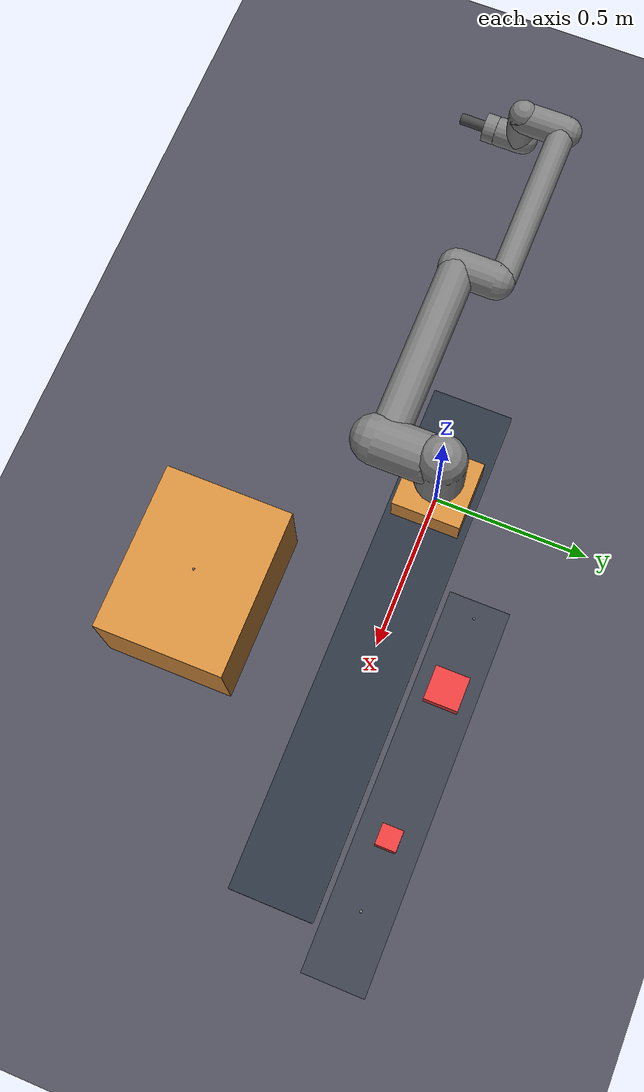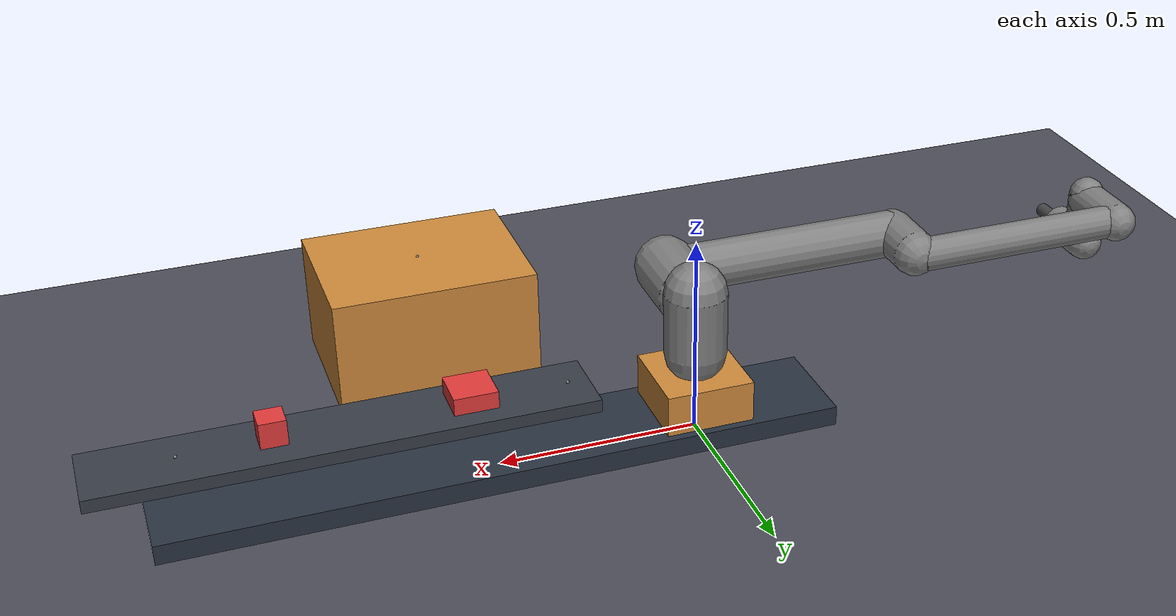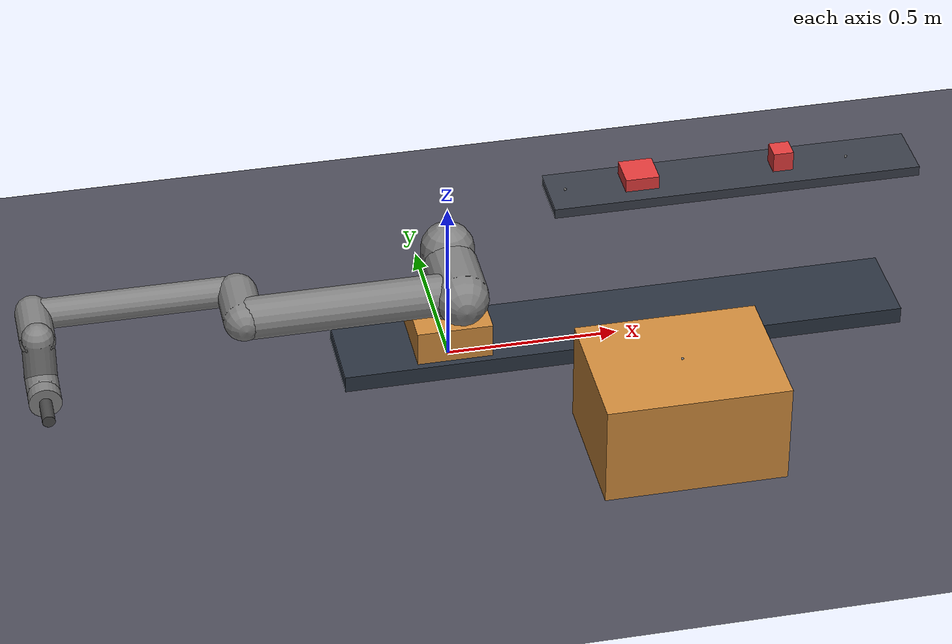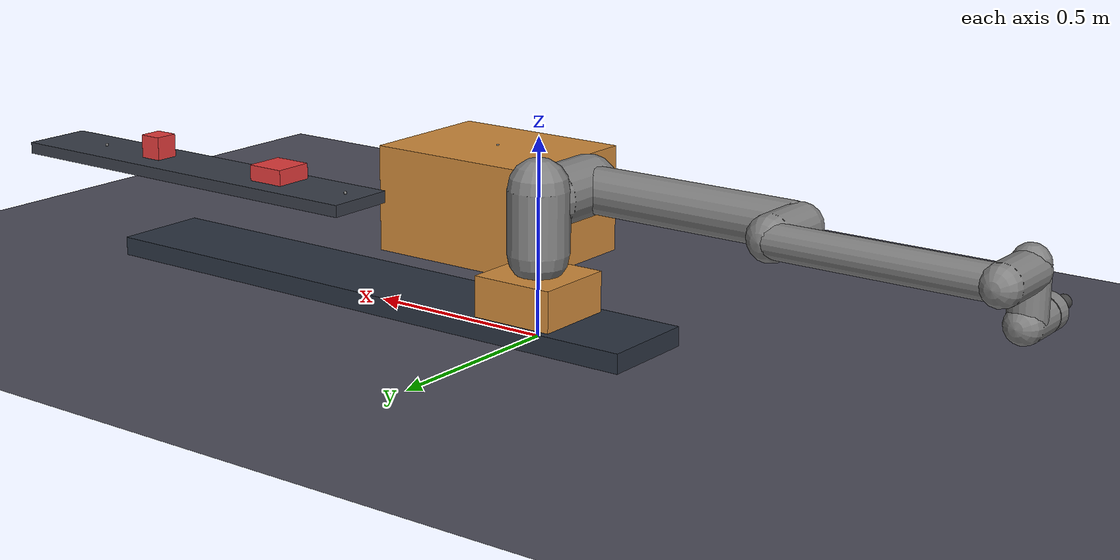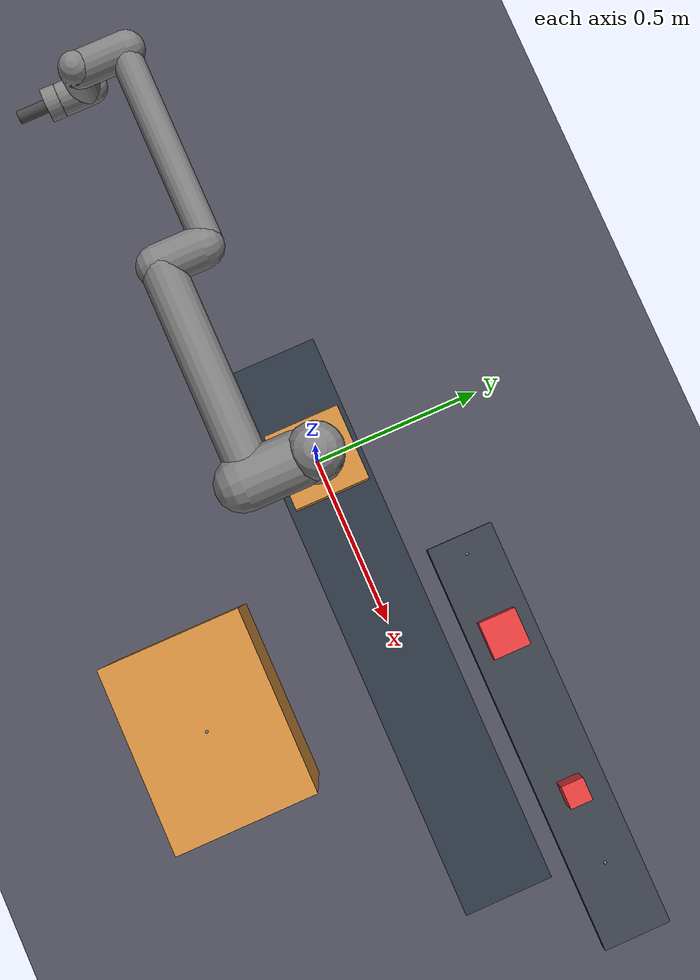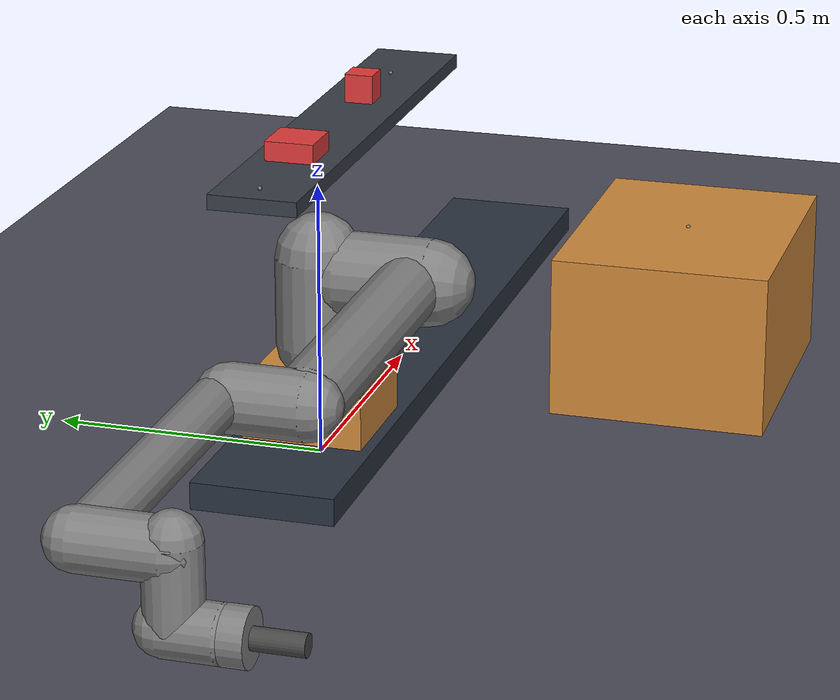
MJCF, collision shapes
<mujoco model="rail_ur10e">
  <compiler angle="radian" meshdir="assets" autolimits="true"/>
  <option integrator="implicitfast" timestep="0.002"/>

  <default>
    <default class="ur10e">
      <material specular="0.5" shininess="0.25"/>
      <joint axis="0 1 0" range="-6.28319 6.28319" armature="0.1"/>
      <general biastype="affine" ctrlrange="-6.2831 6.2831" gainprm="5000" biasprm="0 -5000 -500"/>
      <default class="size4">
        <joint damping="10"/>
        <general forcerange="-330 330"/>
      </default>
      <default class="size3">
        <joint damping="5"/>
        <general forcerange="-150 150"/>
        <default class="size3_limited">
          <joint range="-3.1415 3.1415"/>
          <general ctrlrange="-3.1415 3.1415"/>
        </default>
      </default>
      <default class="size2">
        <joint damping="2"/>
        <general forcerange="-56 56"/>
      </default>
      <default class="visual">
        <geom type="mesh" contype="0" conaffinity="0" group="2"/>
      </default>
      <default class="collision">
        <geom type="capsule" group="3" contype="1" conaffinity="6"/>
        <default class="eef_collision">
          <geom type="cylinder" contype="16" conaffinity="2"/>
        </default>
      </default>
      <site size="0.001" rgba="0.5 0.5 0.5 0.3" group="4"/>
    </default>
  </default>

  <asset>
    <material class="ur10e" name="black" rgba="0.033 0.033 0.033 1"/>
    <material class="ur10e" name="jointgray" rgba="0.278 0.278 0.278 1"/>
    <material class="ur10e" name="linkgray" rgba="0.82 0.82 0.82 1"/>
    <material class="ur10e" name="urblue" rgba="0.49 0.678 0.8 1"/>
    <!-- Cell furniture, named so a viewer can theme it like any other material. -->
    <material name="carriage" rgba="0.81 0.54 0.23 1"/>
    <material name="rail" rgba="0.165 0.2 0.251 1"/>
    <material name="belt" rgba="0.22 0.24 0.28 1"/>
    <material name="part" rgba="0.886 0.231 0.231 1"/>
    <mesh file="base_0.obj"/><mesh file="base_1.obj"/>
    <mesh file="shoulder_0.obj"/><mesh file="shoulder_1.obj"/><mesh file="shoulder_2.obj"/>
    <mesh file="upperarm_0.obj"/><mesh file="upperarm_1.obj"/><mesh file="upperarm_2.obj"/><mesh file="upperarm_3.obj"/>
    <mesh file="forearm_0.obj"/><mesh file="forearm_1.obj"/><mesh file="forearm_2.obj"/><mesh file="forearm_3.obj"/>
    <mesh file="wrist1_0.obj"/><mesh file="wrist1_1.obj"/><mesh file="wrist1_2.obj"/>
    <mesh file="wrist2_0.obj"/><mesh file="wrist2_1.obj"/><mesh file="wrist2_2.obj"/>
    <mesh file="wrist3.obj"/>
  </asset>

  <worldbody>
    <light pos="0 0 3" dir="0 0 -1"/>
    <geom name="floor" type="plane" size="4 4 0.1" rgba="0.3 0.3 0.35 1"
          contype="2" conaffinity="7"/>
    <geom name="rail_beam" type="box" size="0.825 0.13 0.025" pos="0.5 0 0.03"
          contype="0" conaffinity="0" material="rail"/>

    <!-- 7th axis: linear carriage 0..1.45 m along X. -->
    <body name="carriage" pos="0 0 0.1">
      <joint name="rail" type="slide" axis="1 0 0" range="0 1.45" damping="30"/>
      <geom type="box" size="0.11 0.11 0.06" mass="12" material="carriage"/>

      <!-- Real UR10e base on the carriage (menagerie geometry verbatim). -->
      <body name="base" pos="0 0 0.06" quat="0 0 0 -1" childclass="ur10e">
        <inertial mass="4.0" pos="0 0 0" diaginertia="0.0061063308908 0.0061063308908 0.01125"/>
        <geom mesh="base_0" material="black" class="visual"/>
        <geom mesh="base_1" material="jointgray" class="visual"/>
        <body name="shoulder_link" pos="0 0 0.181">
          <inertial pos="0 0 0" mass="7.778" diaginertia="0.0314743 0.0314743 0.0218756"/>
          <joint name="j1" class="size4" axis="0 0 1"/>
          <geom mesh="shoulder_0" material="urblue" class="visual"/>
          <geom mesh="shoulder_1" material="black" class="visual"/>
          <geom mesh="shoulder_2" material="jointgray" class="visual"/>
          <geom class="collision" size="0.078 0.08" pos="0 0 -0.05"/>
          <body name="upper_arm_link" pos="0 0.176 0" quat="1 0 1 0">
            <inertial pos="0 0 0.3065" mass="12.93" diaginertia="0.423074 0.423074 0.0363656"/>
            <joint name="j2" class="size4"/>
            <geom mesh="upperarm_0" material="black" class="visual"/>
            <geom mesh="upperarm_1" material="jointgray" class="visual"/>
            <geom mesh="upperarm_2" material="urblue" class="visual"/>
            <geom mesh="upperarm_3" material="linkgray" class="visual"/>
            <geom class="collision" pos="0 -0.05 0" quat="1 1 0 0" size="0.078 0.08"/>
            <geom class="collision" size="0.06 0.3" pos="0 0 0.3"/>
            <body name="forearm_link" pos="0 -0.137 0.613">
              <inertial pos="0 0 0.2855" mass="3.87" diaginertia="0.11059 0.11059 0.0108844"/>
              <joint name="j3" class="size3_limited"/>
              <geom mesh="forearm_0" material="urblue" class="visual"/>
              <geom mesh="forearm_1" material="black" class="visual"/>
              <geom mesh="forearm_2" material="jointgray" class="visual"/>
              <geom mesh="forearm_3" material="linkgray" class="visual"/>
              <geom class="collision" pos="0 0.08 0" quat="1 1 0 0" size="0.058 0.065"/>
              <geom class="collision" size="0.043 0.28" pos="0 0 0.29"/>
              <body name="wrist_1_link" pos="0 0 0.571" quat="1 0 1 0">
                <inertial pos="0 0.135 0" quat="0.5 0.5 -0.5 0.5" mass="1.96"
                  diaginertia="0.0055125 0.00510825 0.00510825"/>
                <joint name="j4" class="size2"/>
                <geom mesh="wrist1_0" material="black" class="visual"/>
                <geom mesh="wrist1_1" material="urblue" class="visual"/>
                <geom mesh="wrist1_2" material="jointgray" class="visual"/>
                <geom class="collision" pos="0 0.06 0" quat="1 1 0 0" size="0.05 0.07"/>
                <body name="wrist_2_link" pos="0 0.135 0">
                  <inertial pos="0 0 0.12" quat="0.5 0.5 -0.5 0.5" mass="1.96"
                    diaginertia="0.0055125 0.00510825 0.00510825"/>
                  <joint name="j5" axis="0 0 1" class="size2"/>
                  <geom mesh="wrist2_0" material="black" class="visual"/>
                  <geom mesh="wrist2_1" material="urblue" class="visual"/>
                  <geom mesh="wrist2_2" material="jointgray" class="visual"/>
                  <geom class="collision" size="0.046 0.065" pos="0 0 0.05"/>
                  <geom class="collision" pos="0 0.028 0.12" quat="1 1 0 0" size="0.046 0.043"/>
                  <body name="wrist_3_link" pos="0 0 0.12">
                    <inertial pos="0 0.092 0" quat="0 1 -1 0" mass="0.202"
                      diaginertia="0.000204525 0.000144346 0.000144346"/>
                    <joint name="j6" class="size2"/>
                    <geom material="linkgray" mesh="wrist3" class="visual"/>
                    <geom class="eef_collision" pos="0 0.097 0" quat="1 1 0 0" size="0.046 0.02"/>
                    <geom name="cup" class="eef_collision" type="cylinder" size="0.018 0.05"
                          pos="0 0.15 0" quat="1 1 0 0" material="jointgray" mass="0.3"/>
                    <site name="tcp" pos="0 0.2 0" quat="-1 1 0 0"/>
                  </body>
                </body>
              </body>
            </body>
          </body>
        </body>
      </body>
    </body>

    <body name="conveyor" pos="0.9 0.25 0.33">
      <joint name="belt_x" type="slide" axis="-1 0 0" range="-0.6 0.6" damping="8"/>
      <geom name="belt" type="box" size="0.55 0.09 0.015" contype="8" conaffinity="4"
            material="belt" friction="1.4 0.02 0.001"/>
    </body>

    <!-- The pick zone, as static frames: where the line delivers from and to.
         They mark the cell, so they must not travel with the belt. -->
    <site name="belt_start" pos="1.25 0.25 0.35" size="0.004"/>
    <site name="belt_end" pos="0.4 0.25 0.35" size="0.004"/>

    <body name="decoy" pos="0.62 0.25 0.37">
      <geom type="box" size="0.05 0.05 0.02" material="part" contype="0" conaffinity="0"/>
      <site name="decoy" pos="0 0 0" size="0.006"/>
    </body>

    <!-- The pallet: where placed parts end up. Structure, so the arm is stopped
         by it and a released part lands on it instead of on the floor. -->
    <body name="pallet" pos="0.55 -0.55 0.15">
      <geom type="box" size="0.26 0.2 0.15" material="carriage" contype="2" conaffinity="7"/>
      <site name="pallet_origin" pos="0 0 0.15" size="0.004"/>
    </body>

    <body name="part" pos="1.05 0.25 0.376">
      <freejoint name="part_free"/>
      <geom type="box" size="0.03 0.03 0.03" material="part" contype="4" conaffinity="15"
            mass="0.4" friction="1.2 0.02 0.001"/>
      <site name="part" pos="0 0 0" size="0.006"/>
    </body>
  </worldbody>

  <!-- A grasp is a constraint, not a fiction: closing the tool welds the part
       to the wrist where it actually caught it, and releasing lets go. -->
  <equality>
    <weld name="grip" body1="wrist_3_link" body2="part" active="false" solref="0.004 1"/>
  </equality>

  <actuator>
    <position name="rail_servo" joint="rail" kp="8000" kv="400" ctrlrange="0 1.45"/>
    <general class="size4" name="j1_servo" joint="j1"/>
    <general class="size4" name="j2_servo" joint="j2"/>
    <general class="size3_limited" name="j3_servo" joint="j3"/>
    <general class="size2" name="j4_servo" joint="j4"/>
    <general class="size2" name="j5_servo" joint="j5"/>
    <general class="size2" name="j6_servo" joint="j6"/>
    <velocity name="belt_drive" joint="belt_x" kv="400" ctrlrange="-1 1"/>
  </actuator>

  <keyframe>
    <!-- qpos: rail, j1..j6, belt_x, then the part's free joint (xyz + quat).
         ctrl: the seven servos, then the belt speed. -->
    <key name="home"
         qpos="0.6 -1.5708 -1.5708 1.5708 -1.5708 -1.5708 0 -0.45 1.05 0.25 0.376 1 0 0 0"
         ctrl="0.6 -1.5708 -1.5708 1.5708 -1.5708 -1.5708 0 0"/>
  </keyframe>
</mujoco>
